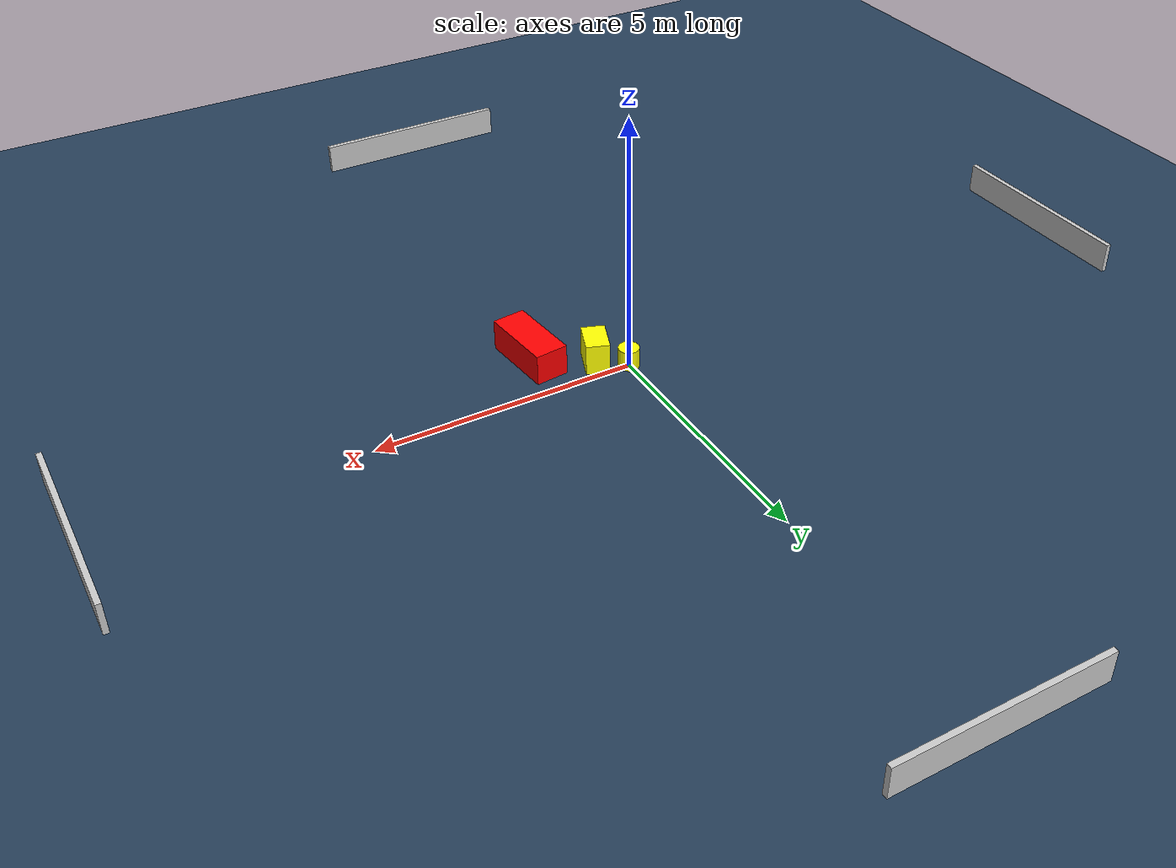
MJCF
<?xml version="1.0" ?>
<mujoco model="generated_environment">
  <option timestep="0.01" integrator="RK4" cone="elliptic"/>
  <default>
    <geom density="1"/>
  </default>
  <asset>
    <texture builtin="gradient" height="3072" name="skybox" rgb1="0.3 0.5 0.7" rgb2="0 0 0" type="skybox" width="512"/>
    <texture builtin="checker" height="300" name="groundplane" rgb1="0.2 0.3 0.4" rgb2="0.1 0.2 0.3" type="2d" width="300"/>
    <material name="groundplane" reflectance="0.2" texrepeat="5 5" texture="groundplane"/>
  </asset>
  <worldbody>
    <light dir="0 0 -1" directional="true" pos="0 0 1.5"/>
    <geom condim="3" friction="0.5 0.005 0.001" material="groundplane" name="floor" pos="0 0 0" size="0 0 0.05" type="plane"/>
    <body name="walls">
      <geom name="wall_1" condim="4" pos="-10.0 0.0 0.3" rgba="0.800000011920929 0.800000011920929 0.800000011920929 1.0" size="0.05 2.0 0.3" type="box"/>
      <geom name="wall_2" condim="4" pos="10.0 0.0 0.3" rgba="0.800000011920929 0.800000011920929 0.800000011920929 1.0" size="0.05 2.0 0.3" type="box"/>
      <geom name="wall_3" condim="4" pos="0.0 -10.0 0.3" rgba="0.800000011920929 0.800000011920929 0.800000011920929 1.0" size="2.0 0.05 0.3" type="box"/>
      <geom name="wall_4" condim="4" pos="0.0 10.0 0.3" rgba="0.800000011920929 0.800000011920929 0.800000011920929 1.0" size="2.0 0.05 0.3" type="box"/>
    </body>
    <body name="robot">
      <joint name="joint_x" type="slide" pos="0 0 0" axis="1 0 0"/>
      <joint name="joint_y" type="slide" pos="0 0 0" axis="0 1 0"/>
      <geom name="robot" type="cylinder" pos="0.0 0.0 0.2" size="0.2 0.2 0.0" mass="5.0" friction="1.0 0.005 0.0001" condim="4" rgba="1.0 1.0 0.0 1.0"/>
    </body>
    <body name="obstacle_1_movable">
      <geom name="obstacle_1_movable" condim="4" pos="0.49674117030090414 -0.3680657063671568 0.3" euler="0 0 159.62966004607298" friction="0.0 0.005 0.001" rgba="1.0 1.0 0.0 1.0" size="0.22414333732293482 0.330927984243454 0.3" type="box" mass="0.1"/>
      <joint type="free"/>
    </body>
    <body name="obstacle_2_static">
      <geom name="obstacle_2_static" condim="4" pos="1.4873363233148422 -1.057804003060728 0.3" euler="0 0 6.1501619253338236" friction="0.0 0.005 0.001" rgba="1.0 0.0 0.0 1.0" size="0.3192181091065016 0.7276829668387896 0.3" type="box"/>
    </body>
  </worldbody>
  <actuator>
    <motor name="actuator_x" joint="joint_x" gear="1" ctrlrange="-1 1"/>
    <motor name="actuator_y" joint="joint_y" gear="1" ctrlrange="-1 1"/>
  </actuator>
</mujoco>
